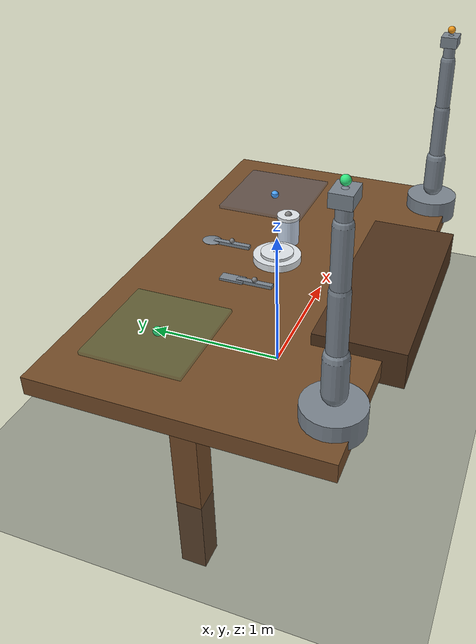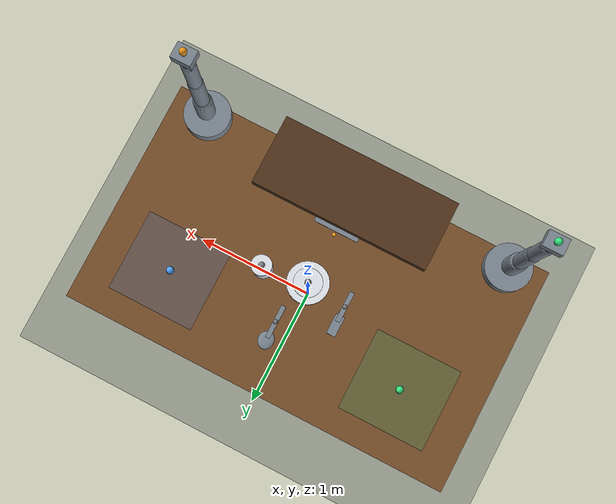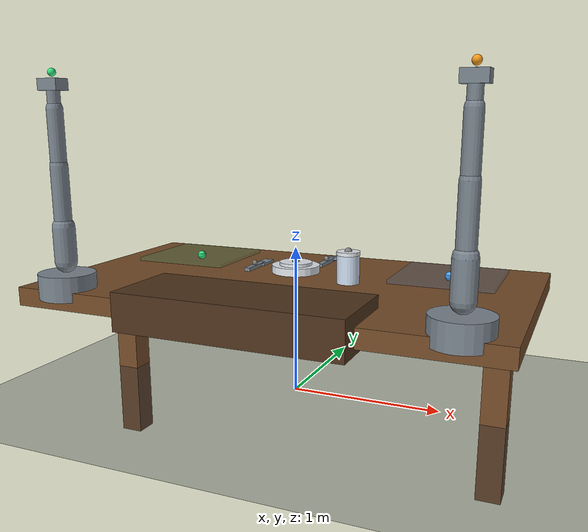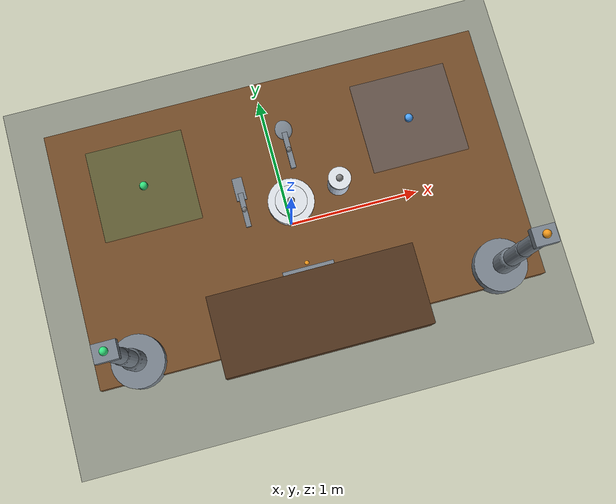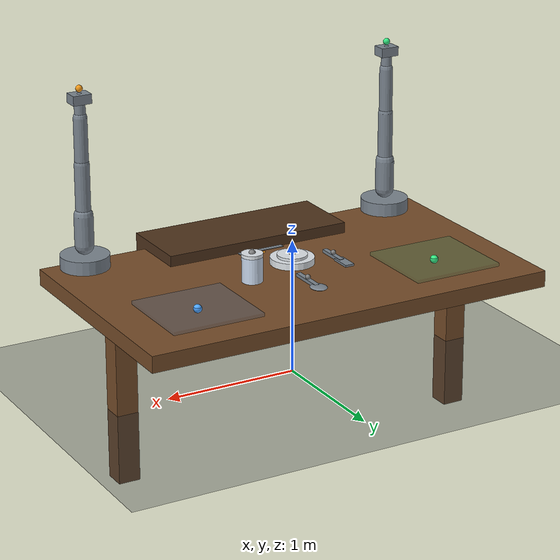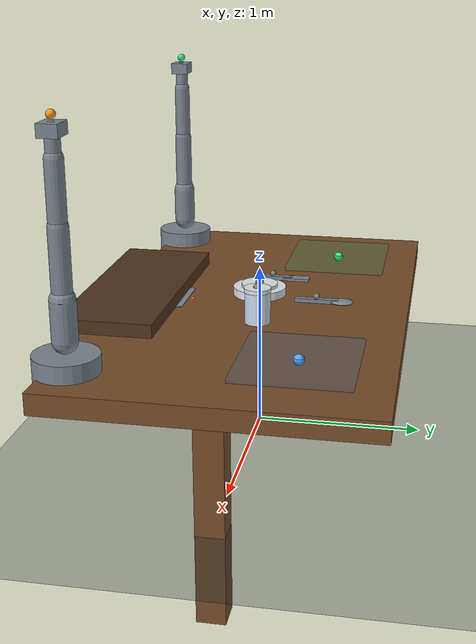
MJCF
<mujoco model="fortifiers_dual_arm_dinner_table">
  <compiler angle="radian" autolimits="true"/>
  <option timestep="0.005" gravity="0 0 -9.81" integrator="implicitfast"/>
  <size njmax="1200" nconmax="800"/>

  <visual>
    <global offwidth="640" offheight="480"/>
    <headlight ambient="0.35 0.35 0.35" diffuse="0.75 0.75 0.75" specular="0.2 0.2 0.2"/>
    <rgba haze="0.15 0.18 0.22 1"/>
  </visual>

  <default>
    <joint damping="1" armature="0.02"/>
    <geom condim="3" friction="0.8 0.05 0.01" solref="0.02 1" solimp="0.9 0.95 0.01"/>
    <position kp="35" forcerange="-8 8"/>
  </default>

  <asset>
    <material name="floor_mat" rgba="0.12 0.15 0.18 1"/>
    <material name="table_mat" rgba="0.46 0.30 0.16 1"/>
    <material name="drawer_mat" rgba="0.31 0.20 0.11 1"/>
    <material name="metal_mat" rgba="0.48 0.52 0.56 1" specular="0.7" shininess="0.5"/>
    <material name="ceramic_mat" rgba="0.88 0.90 0.92 1" specular="0.5"/>
    <material name="cup_mat" rgba="0.80 0.86 0.94 1" specular="0.4"/>
    <material name="zone_clean_mat" rgba="0.15 0.65 0.42 0.22"/>
    <material name="zone_place_mat" rgba="0.18 0.45 0.78 0.22"/>
  </asset>

  <worldbody>
    <geom name="floor" type="plane" size="4 4 0.1" material="floor_mat"/>
    <light name="key" pos="0 -1.5 3.6" dir="0 0 -1" diffuse="0.9 0.9 0.9"/>
    <light name="fill" pos="-2 1 2" dir="0 0 -1" diffuse="0.35 0.42 0.5"/>
    <camera name="overview" pos="0 -3.7 3.2" xyaxes="1 0 0 0 0.65 0.76"/>

    <body name="table" pos="0 0 0.72">
      <geom name="table_top" type="box" size="1.55 0.90 0.06" material="table_mat" mass="12"/>
      <geom name="table_leg_left" type="box" pos="-1.35 0  -0.62" size="0.08 0.08 0.62" material="table_mat"/>
      <geom name="table_leg_right" type="box" pos="1.35 0  -0.62" size="0.08 0.08 0.62" material="table_mat"/>
      <body name="drawer" pos="0 -0.76 0.02">
        <joint name="drawer_slide" type="slide" axis="0 1 0" range="0 0.30"/>
        <geom name="drawer_box" type="box" size="0.72 0.28 0.12" material="drawer_mat" mass="2"/>
        <geom name="drawer_handle" type="box" pos="0 0.29 0.02" size="0.18 0.025 0.025" material="metal_mat"/>
        <site name="drawer_handle_site" pos="0 0.34 0.02" size="0.025" rgba="0.95 0.6 0.1 1"/>
      </body>
    </body>

    <body name="clean_area" pos="-0.95 0.38 0.81">
      <geom name="clean_area_geom" type="box" size="0.34 0.32 0.012" material="zone_clean_mat" contype="0" conaffinity="0"/>
      <site name="clean_area_site" size="0.03" rgba="0.2 0.9 0.5 1"/>
    </body>
    <body name="place_area" pos="0.95 0.38 0.81">
      <geom name="place_area_geom" type="box" size="0.34 0.32 0.012" material="zone_place_mat" contype="0" conaffinity="0"/>
      <site name="place_area_site" size="0.03" rgba="0.3 0.65 1 1"/>
    </body>

    <body name="plate" pos="0 0 0.86">
      <freejoint name="plate_free"/>
      <geom name="plate_geom" type="cylinder" size="0.16 0.025" material="ceramic_mat" mass="0.22"/>
      <geom type="cylinder" pos="0 0 0.035" size="0.11 0.01" material="ceramic_mat" mass="0.02"/>
      <site name="plate_grasp_site" pos="0 0 0.05" size="0.025"/>
    </body>
    <body name="cup" pos="0.35 0.05 0.88">
      <freejoint name="cup_free"/>
      <geom name="cup_geom" type="cylinder" size="0.075 0.10" material="cup_mat" mass="0.18"/>
      <geom type="cylinder" pos="0 0 0.10" size="0.078 0.012" material="ceramic_mat"/>
      <site name="cup_grasp_site" pos="0 0 0.11" size="0.025"/>
    </body>
    <body name="fork" pos="-0.32 0.03 0.84">
      <freejoint name="fork_free"/>
      <geom name="fork_geom" type="box" size="0.018 0.12 0.012" material="metal_mat" mass="0.05"/>
      <geom type="box" pos="0 0.15 0" size="0.035 0.08 0.008" material="metal_mat"/>
      <site name="fork_grasp_site" pos="0 0 0.025" size="0.018"/>
    </body>
    <body name="spoon" pos="0.08 0.36 0.84">
      <freejoint name="spoon_free"/>
      <geom name="spoon_geom" type="box" size="0.018 0.13 0.012" material="metal_mat" mass="0.05"/>
      <geom type="ellipsoid" pos="0 0.15 0" size="0.06 0.07 0.012" material="metal_mat"/>
      <site name="spoon_grasp_site" pos="0 0 0.025" size="0.018"/>
    </body>

    <!-- SO-101-compatible visual/control proxies. Replace with the official model asset before final submission. -->
    <body name="left_arm" pos="-1.25 -0.78 0.80">
      <geom name="left_base_geom" type="cylinder" size="0.18 0.08" material="metal_mat" mass="1"/>
      <body name="left_shoulder" pos="0 0 0.15">
        <joint name="left_shoulder_pan" type="hinge" axis="0 0 1" range="-2.8 2.8"/>
        <geom type="capsule" fromto="0 0 0 0 0 0.22" size="0.07" material="metal_mat" mass="0.5"/>
        <body name="left_upper_link" pos="0 0 0.22">
          <joint name="left_shoulder_lift" type="hinge" axis="0 1 0" range="-1.6 1.6"/>
          <geom type="capsule" fromto="0 0 0 0 0 0.38" size="0.055" material="metal_mat" mass="0.45"/>
          <body name="left_forearm" pos="0 0 0.38">
            <joint name="left_elbow" type="hinge" axis="0 1 0" range="-2.2 0.2"/>
            <geom type="capsule" fromto="0 0 0 0 0 0.34" size="0.05" material="metal_mat" mass="0.35"/>
            <body name="left_wrist" pos="0 0 0.34">
              <joint name="left_wrist_roll" type="hinge" axis="0 0 1" range="-3.1 3.1"/>
              <joint name="left_wrist_pitch" type="hinge" axis="0 1 0" range="-1.7 1.7"/>
              <geom type="capsule" fromto="0 0 0 0 0 0.14" size="0.04" material="metal_mat" mass="0.18"/>
              <body name="left_hand" pos="0 0 0.14">
                <joint name="left_gripper" type="slide" axis="0 0 1" range="0 0.045"/>
                <geom type="box" size="0.07 0.055 0.035" material="metal_mat" mass="0.12"/>
                <site name="left_grasp_site" pos="0 0 0.07" size="0.025" rgba="0.2 0.9 0.5 1"/>
              </body>
            </body>
          </body>
        </body>
      </body>
    </body>

    <body name="right_arm" pos="1.25 -0.78 0.80">
      <geom name="right_base_geom" type="cylinder" size="0.18 0.08" material="metal_mat" mass="1"/>
      <body name="right_shoulder" pos="0 0 0.15">
        <joint name="right_shoulder_pan" type="hinge" axis="0 0 1" range="-2.8 2.8"/>
        <geom type="capsule" fromto="0 0 0 0 0 0.22" size="0.07" material="metal_mat" mass="0.5"/>
        <body name="right_upper_link" pos="0 0 0.22">
          <joint name="right_shoulder_lift" type="hinge" axis="0 1 0" range="-1.6 1.6"/>
          <geom type="capsule" fromto="0 0 0 0 0 0.38" size="0.055" material="metal_mat" mass="0.45"/>
          <body name="right_forearm" pos="0 0 0.38">
            <joint name="right_elbow" type="hinge" axis="0 1 0" range="-2.2 0.2"/>
            <geom type="capsule" fromto="0 0 0 0 0 0.34" size="0.05" material="metal_mat" mass="0.35"/>
            <body name="right_wrist" pos="0 0 0.34">
              <joint name="right_wrist_roll" type="hinge" axis="0 0 1" range="-3.1 3.1"/>
              <joint name="right_wrist_pitch" type="hinge" axis="0 1 0" range="-1.7 1.7"/>
              <geom type="capsule" fromto="0 0 0 0 0 0.14" size="0.04" material="metal_mat" mass="0.18"/>
              <body name="right_hand" pos="0 0 0.14">
                <joint name="right_gripper" type="slide" axis="0 0 1" range="0 0.045"/>
                <geom type="box" size="0.07 0.055 0.035" material="metal_mat" mass="0.12"/>
                <site name="right_grasp_site" pos="0 0 0.07" size="0.025" rgba="0.95 0.6 0.1 1"/>
              </body>
            </body>
          </body>
        </body>
      </body>
    </body>
  </worldbody>

  <actuator>
    <position name="drawer_position" joint="drawer_slide" ctrlrange="0 0.30"/>
    <position name="left_shoulder_pan_motor" joint="left_shoulder_pan" ctrlrange="-2.8 2.8"/>
    <position name="left_shoulder_lift_motor" joint="left_shoulder_lift" ctrlrange="-1.6 1.6"/>
    <position name="left_elbow_motor" joint="left_elbow" ctrlrange="-2.2 0.2"/>
    <position name="left_wrist_roll_motor" joint="left_wrist_roll" ctrlrange="-3.1 3.1"/>
    <position name="left_wrist_pitch_motor" joint="left_wrist_pitch" ctrlrange="-1.7 1.7"/>
    <position name="left_gripper_motor" joint="left_gripper" ctrlrange="0 0.045"/>
    <position name="right_shoulder_pan_motor" joint="right_shoulder_pan" ctrlrange="-2.8 2.8"/>
    <position name="right_shoulder_lift_motor" joint="right_shoulder_lift" ctrlrange="-1.6 1.6"/>
    <position name="right_elbow_motor" joint="right_elbow" ctrlrange="-2.2 0.2"/>
    <position name="right_wrist_roll_motor" joint="right_wrist_roll" ctrlrange="-3.1 3.1"/>
    <position name="right_wrist_pitch_motor" joint="right_wrist_pitch" ctrlrange="-1.7 1.7"/>
    <position name="right_gripper_motor" joint="right_gripper" ctrlrange="0 0.045"/>
  </actuator>
</mujoco>
